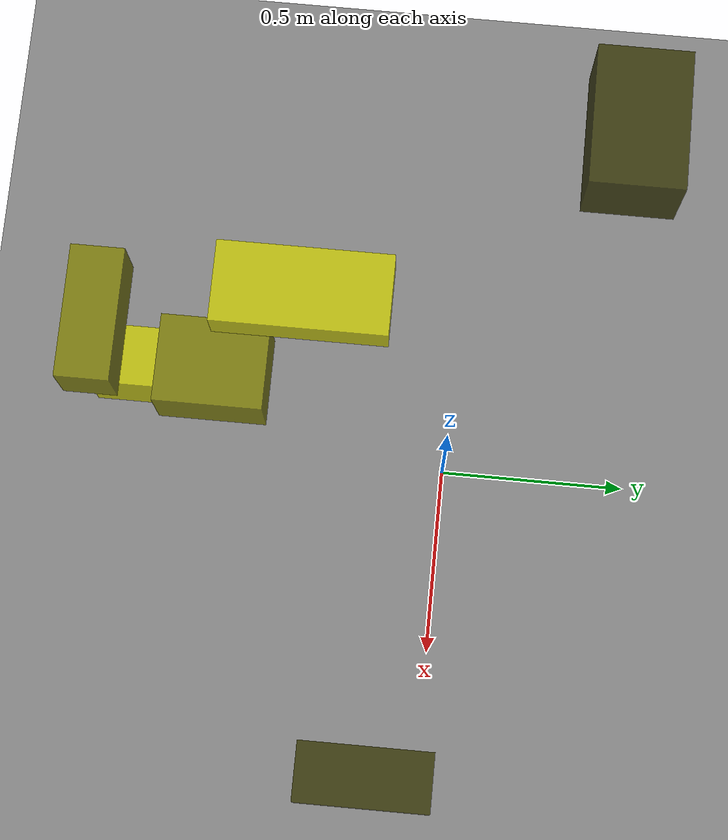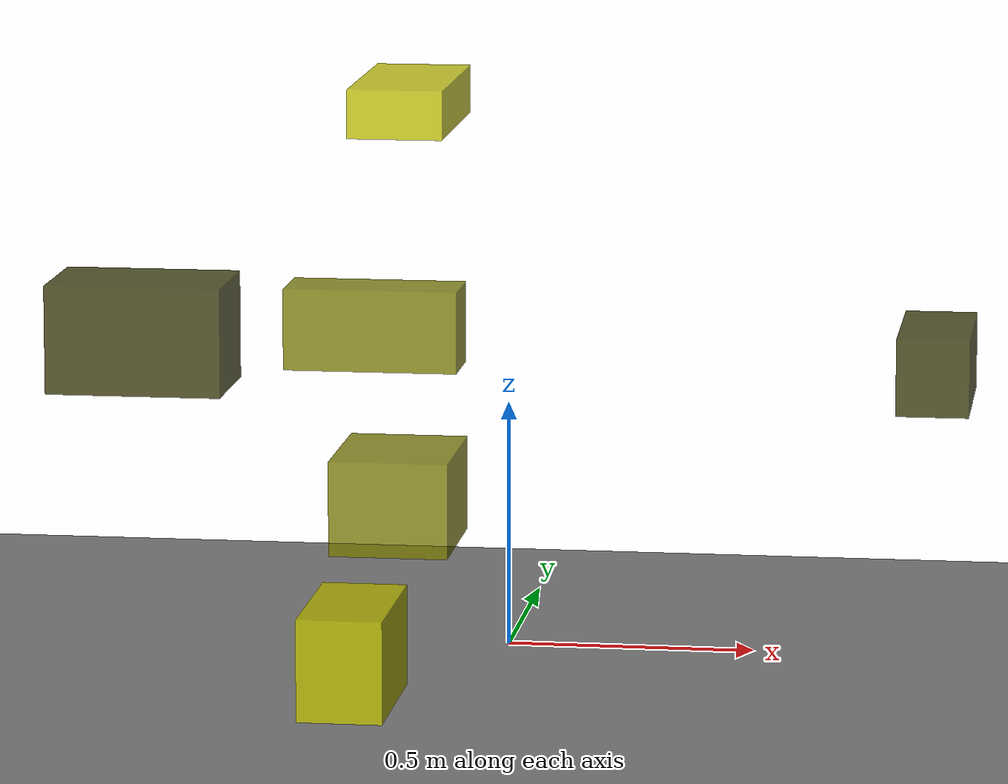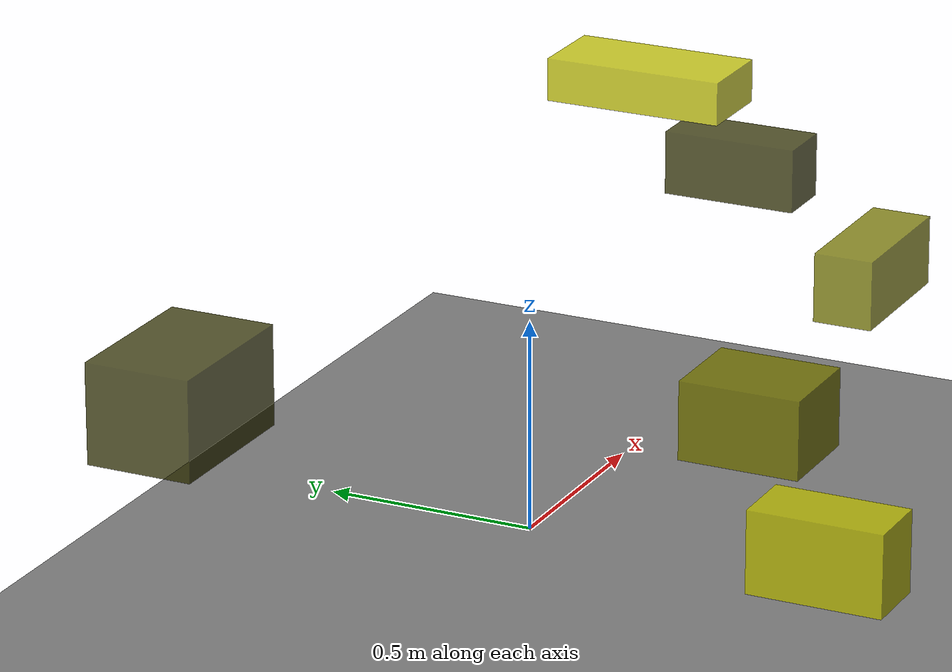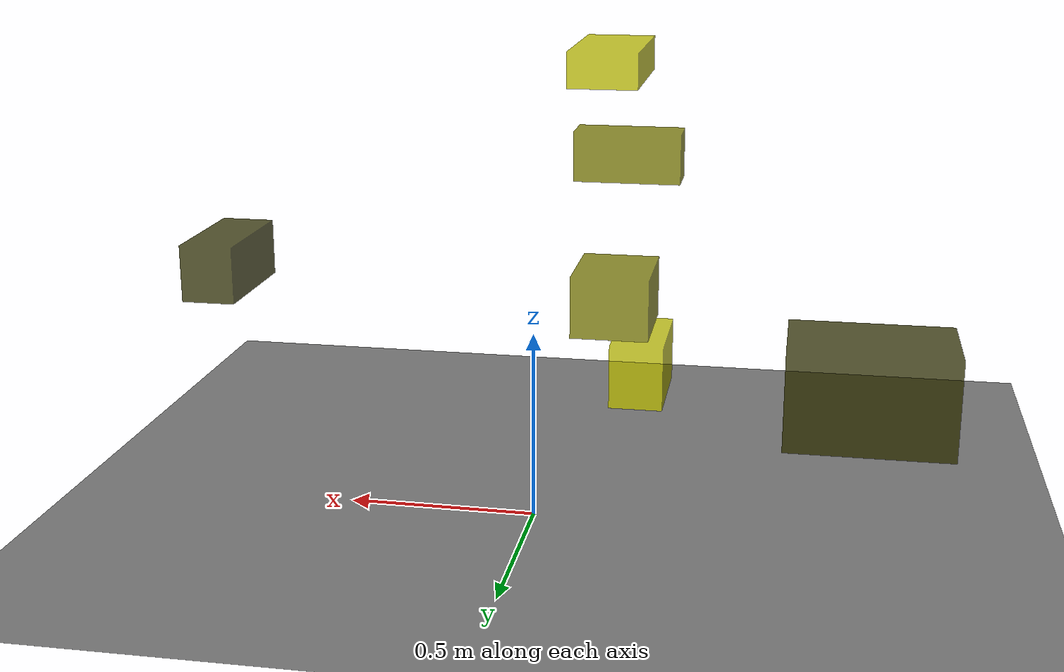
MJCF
<?xml version="1.0"?>
<mujoco model="obstacle_scene">
  <compiler angle="radian" coordinate="local"/>
  <option timestep="0.001" gravity="0 0 -9.81"/>

  <asset>
    <material name="obstacle_mat" rgba="0.8 0.8 0.0 0.8"/>
    <material name="ground_mat" rgba="0.5 0.5 0.5 1"/>
  </asset>

  <worldbody>
    <!-- Ground plane -->
    <geom name="ground" type="plane" size="3 3 0.1" material="ground_mat"/>

    <!-- Obstacles -->
    <body name="obstacle_0" pos="-0.835001 0.420003 0.549100">
      <geom name="obs_0" type="box" size="0.186485 0.123182 0.115353" rgba="0.2 0.2 0.0 0.8"/>
    </body>
    <body name="obstacle_1" pos="-0.137615 -0.869711 0.810030">
      <geom name="obs_1" type="box" size="0.161723 0.065087 0.075844" rgba="0.5 0.5 0.0 0.8"/>
    </body>
    <body name="obstacle_2" pos="-0.193540 -0.807841 0.169094">
      <geom name="obs_2" type="box" size="0.081274 0.159127 0.098016" rgba="0.8 0.8 0.0 0.8"/>
    </body>
    <body name="obstacle_3" pos="0.867949 -0.130638 0.624892">
      <geom name="obs_3" type="box" size="0.071257 0.161844 0.076309" rgba="0.2 0.2 0.0 0.8"/>
    </body>
    <body name="obstacle_4" pos="-0.132918 -0.614448 0.433472">
      <geom name="obs_4" type="box" size="0.113467 0.140568 0.091165" rgba="0.5 0.5 0.0 0.8"/>
    </body>
    <body name="obstacle_5" pos="-0.148437 -0.354410 1.158955">
      <geom name="obs_5" type="box" size="0.092077 0.197314 0.046902" rgba="0.8 0.8 0.0 0.8"/>
    </body>
  </worldbody>
</mujoco>
